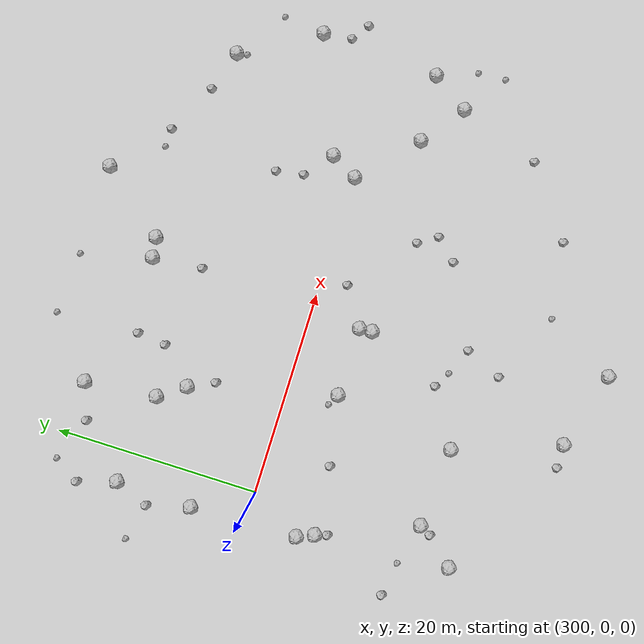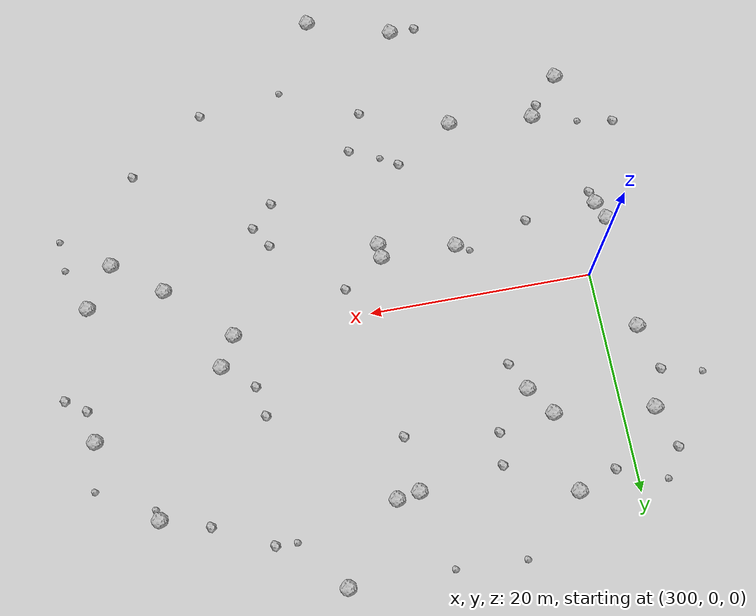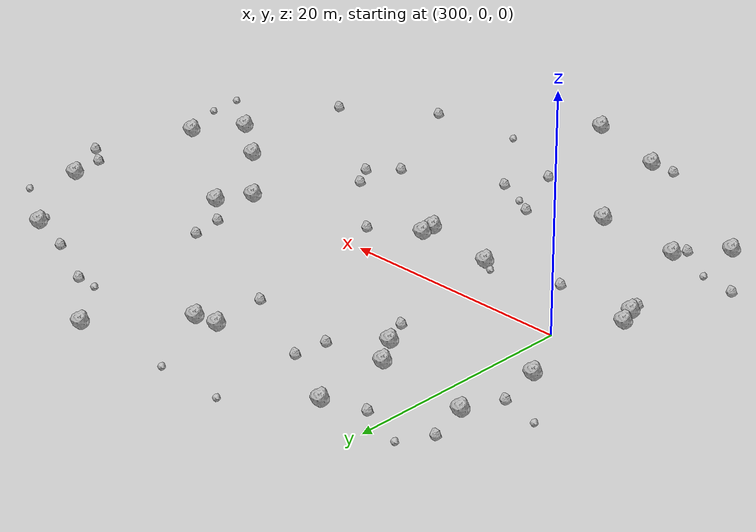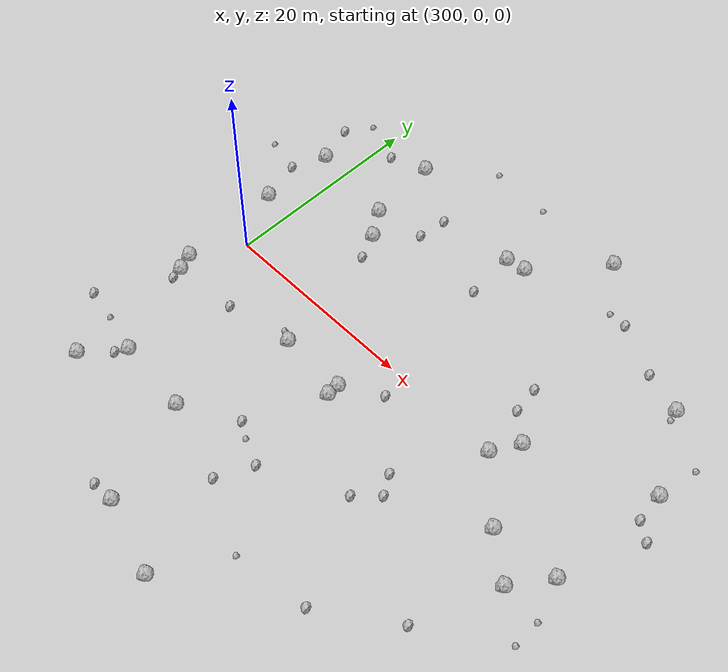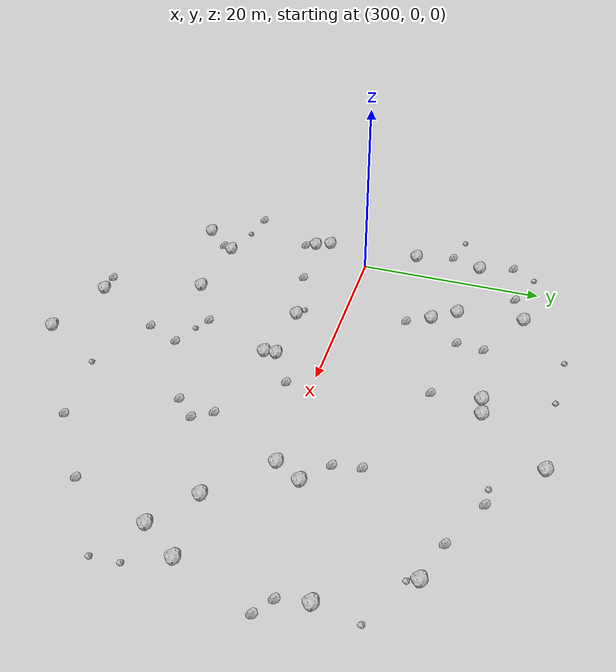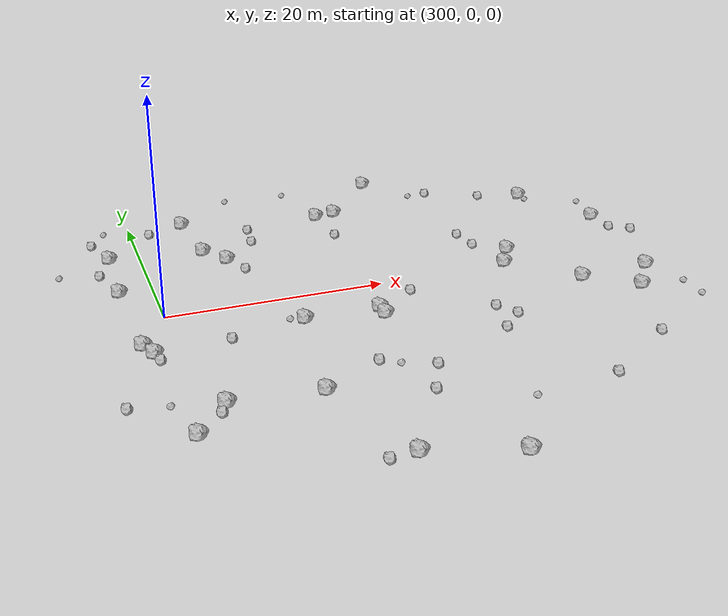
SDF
<sdf version="1.6">
 <world name="default">
  <include><uri>model://sun</uri></include>
  <model name="rock1_8_2">
   <include><uri>model://rock1</uri><pose>332.3651189671823 -0.12615887867686837 0.5 0 0 0</pose></include>
  </model>
  <model name="rock1_8_3">
   <include><uri>model://rock1</uri><pose>318.1235895319773 -4.956846399359648 0.5 0 0 0</pose></include>
  </model>
  <model name="rock1_8_4">
   <include><uri>model://rock1</uri><pose>313.2032707551406 -27.018634415828473 0.5 0 0 0</pose></include>
  </model>
  <model name="rock1_8_5">
   <include><uri>model://rock1</uri><pose>318.1974326363777 -6.234334202056548 0.5 0 0 0</pose></include>
  </model>
  <model name="rock1_8_6">
   <include><uri>model://rock1</uri><pose>320.7803408478695 -29.400631608789844 0.5 0 0 0</pose></include>
  </model>
  <model name="rock1_8_7">
   <include><uri>model://rock1</uri><pose>337.89229141752537 -5.327075768478764 0.5 0 0 0</pose></include>
  </model>
  <model name="rock1_8_8">
   <include><uri>model://rock1</uri><pose>298.8676991578963 -19.703655122965564 0.5 0 0 0</pose></include>
  </model>
  <model name="rock1_8_9">
   <include><uri>model://rock1</uri><pose>345.64774104338665 7.23480214739061 0.5 0 0 0</pose></include>
  </model>
  <model name="rock1_8_10">
   <include><uri>model://rock1</uri><pose>305.30543812383513 18.98958033297727 0.5 0 0 0</pose></include>
  </model>
  <model name="rock1_8_11">
   <include><uri>model://rock1</uri><pose>344.80414710115423 -4.905600515419838 0.5 0 0 0</pose></include>
  </model>
  <model name="rock1_8_12">
   <include><uri>model://rock1</uri><pose>305.98555910906674 11.883981250996989 0.5 0 0 0</pose></include>
  </model>
  <model name="rock1_8_13">
   <include><uri>model://rock1</uri><pose>298.00713269492877 -6.6468844231021755 0.5 0 0 0</pose></include>
  </model>
  <model name="rock1_8_14">
   <include><uri>model://rock1</uri><pose>297.1762921760268 12.954567392678115 0.5 0 0 0</pose></include>
  </model>
  <model name="rock1_8_15">
   <include><uri>model://rock1</uri><pose>309.54779813632405 -16.767126733319046 0.5 0 0 0</pose></include>
  </model>
  <model name="rock1_8_16">
   <include><uri>model://rock1</uri><pose>318.79617725487947 16.54391106266877 0.5 0 0 0</pose></include>
  </model>
  <model name="rock1_8_17">
   <include><uri>model://rock1</uri><pose>342.2356756182966 -8.588083544923553 0.5 0 0 0</pose></include>
  </model>
  <model name="rock1_8_18">
   <include><uri>model://rock1</uri><pose>333.8762999810415 2.561232120643936 0.5 0 0 0</pose></include>
  </model>
  <model name="rock1_8_19">
   <include><uri>model://rock1</uri><pose>307.77399489164185 9.3417033078875 0.5 0 0 0</pose></include>
  </model>
  <model name="rock1_8_20">
   <include><uri>model://rock1</uri><pose>320.8106321766237 16.860944035101504 0.5 0 0 0</pose></include>
  </model>
  <model name="rock1_8_21">
   <include><uri>model://rock1</uri><pose>301.8305454005829 -16.038475940313774 0.5 0 0 0</pose></include>
  </model>
  <model name="rock1_8_22">
   <include><uri>model://rock1</uri><pose>341.062367755124 14.97986937647179 0.5 0 0 0</pose></include>
  </model>
  <model name="rock1_8_23">
   <include><uri>model://rock1</uri><pose>326.25287885167165 23.49000891559269 0.5 0 0 0</pose></include>
  </model>
  <model name="rock1_8_24">
   <include><uri>model://rock1</uri><pose>297.3257951344707 -5.010307857161386 0.5 0 0 0</pose></include>
  </model>
  <model name="rock1_8_25">
   <include><uri>model://rock1</uri><pose>311.3243210243445 -4.874323012931839 0.5 0 0 0</pose></include>
  </model>
  <model name="rock1_8_26">
   <include><uri>model://rock1</uri><pose>296.98278559834904 5.4674335893084205 0.5 0 0 0</pose></include>
  </model>
  <model name="rock2_8_0">
   <include><uri>model://rock2</uri><pose>301.75564665525184 17.69046263543273 0.3 0 0 0</pose></include>
  </model>
  <model name="rock2_8_1">
   <include><uri>model://rock2</uri><pose>310.9583188043452 12.727669389459841 0.3 0 0 0</pose></include>
  </model>
  <model name="rock2_8_2">
   <include><uri>model://rock2</uri><pose>327.8905764943594 -7.927589487634904 0.3 0 0 0</pose></include>
  </model>
  <model name="rock2_8_3">
   <include><uri>model://rock2</uri><pose>331.15496171887656 4.835060936615463 0.3 0 0 0</pose></include>
  </model>
  <model name="rock2_8_4">
   <include><uri>model://rock2</uri><pose>332.22383216573854 -21.731938128246245 0.3 0 0 0</pose></include>
  </model>
  <model name="rock2_8_5">
   <include><uri>model://rock2</uri><pose>304.5612305167926 -6.118654859053102 0.3 0 0 0</pose></include>
  </model>
  <model name="rock2_8_6">
   <include><uri>model://rock2</uri><pose>321.84439682776406 -2.5773659884835673 0.3 0 0 0</pose></include>
  </model>
  <model name="rock2_8_7">
   <include><uri>model://rock2</uri><pose>310.8779973992425 -27.055633692481546 0.3 0 0 0</pose></include>
  </model>
  <model name="rock2_8_8">
   <include><uri>model://rock2</uri><pose>311.2715064136517 15.608069795588278 0.3 0 0 0</pose></include>
  </model>
  <model name="rock2_8_9">
   <include><uri>model://rock2</uri><pose>294.4992873367318 -14.350792085709427 0.3 0 0 0</pose></include>
  </model>
  <model name="rock2_8_10">
   <include><uri>model://rock2</uri><pose>308.9204741924438 6.843841210137235 0.3 0 0 0</pose></include>
  </model>
  <model name="rock2_8_11">
   <include><uri>model://rock2</uri><pose>336.8282400472802 16.31951783440813 0.3 0 0 0</pose></include>
  </model>
  <model name="rock2_8_12">
   <include><uri>model://rock2</uri><pose>295.79281764399 9.656551601709275 0.3 0 0 0</pose></include>
  </model>
  <model name="rock2_8_13">
   <include><uri>model://rock2</uri><pose>317.58299547074216 -19.30024661642876 0.3 0 0 0</pose></include>
  </model>
  <model name="rock2_8_14">
   <include><uri>model://rock2</uri><pose>301.17430009036894 -17.161011036525988 0.3 0 0 0</pose></include>
  </model>
  <model name="rock2_8_15">
   <include><uri>model://rock2</uri><pose>329.1064984829135 -9.824023027929627 0.3 0 0 0</pose></include>
  </model>
  <model name="rock2_8_16">
   <include><uri>model://rock2</uri><pose>339.19054732431374 -16.78000956982503 0.3 0 0 0</pose></include>
  </model>
  <model name="rock2_8_17">
   <include><uri>model://rock2</uri><pose>327.10776822855036 -11.894591532481073 0.3 0 0 0</pose></include>
  </model>
  <model name="rock2_8_18">
   <include><uri>model://rock2</uri><pose>330.6890355333126 7.586138377775818 0.3 0 0 0</pose></include>
  </model>
  <model name="rock2_8_19">
   <include><uri>model://rock2</uri><pose>295.9565545091444 16.743222015842797 0.3 0 0 0</pose></include>
  </model>
  <model name="rock2_8_20">
   <include><uri>model://rock2</uri><pose>331.7029938103388 18.88316587611707 0.3 0 0 0</pose></include>
  </model>
  <model name="rock2_8_21">
   <include><uri>model://rock2</uri><pose>319.18667101320125 -15.747353606851483 0.3 0 0 0</pose></include>
  </model>
  <model name="rock2_8_22">
   <include><uri>model://rock2</uri><pose>314.91106924408643 -13.632519330503804 0.3 0 0 0</pose></include>
  </model>
  <model name="rock2_8_23">
   <include><uri>model://rock2</uri><pose>298.26467390750906 -7.793430539547369 0.3 0 0 0</pose></include>
  </model>
  <model name="rock2_8_24">
   <include><uri>model://rock2</uri><pose>347.7919593599252 3.1008488597943114 0.3 0 0 0</pose></include>
  </model>
  <model name="rock2_8_25">
   <include><uri>model://rock2</uri><pose>345.99944837257243 4.346799120114369 0.3 0 0 0</pose></include>
  </model>
  <model name="rock2_8_26">
   <include><uri>model://rock2</uri><pose>319.20202885141015 11.589220889993548 0.3 0 0 0</pose></include>
  </model>
  <model name="rock3_8_0">
   <include><uri>model://rock3</uri><pose>292.19748995222 10.49960142514837 0.2 0 0 0</pose></include>
  </model>
  <model name="rock3_8_1">
   <include><uri>model://rock3</uri><pose>316.4632437055362 -14.600559091168407 0.2 0 0 0</pose></include>
  </model>
  <model name="rock3_8_2">
   <include><uri>model://rock3</uri><pose>297.7031487182223 -14.976248314799758 0.2 0 0 0</pose></include>
  </model>
  <model name="rock3_8_3">
   <include><uri>model://rock3</uri><pose>310.1145461998616 -4.285989088204573 0.2 0 0 0</pose></include>
  </model>
  <model name="rock3_8_4">
   <include><uri>model://rock3</uri><pose>346.33816269041176 -8.941997247304183 0.2 0 0 0</pose></include>
  </model>
  <model name="rock3_8_5">
   <include><uri>model://rock3</uri><pose>329.7962306390156 18.908094607088152 0.2 0 0 0</pose></include>
  </model>
  <model name="rock3_8_6">
   <include><uri>model://rock3</uri><pose>346.19425722197025 11.491129686028266 0.2 0 0 0</pose></include>
  </model>
  <model name="rock3_8_7">
   <include><uri>model://rock3</uri><pose>317.01879158182237 23.556065321066818 0.2 0 0 0</pose></include>
  </model>
  <model name="rock3_8_8">
   <include><uri>model://rock3</uri><pose>324.5751025272 -22.761368140875888 0.2 0 0 0</pose></include>
  </model>
  <model name="rock3_8_9">
   <include><uri>model://rock3</uri><pose>310.84259564071874 23.855516099986005 0.2 0 0 0</pose></include>
  </model>
  <model name="rock3_8_10">
   <include><uri>model://rock3</uri><pose>341.26572081696395 13.95964329832298 0.2 0 0 0</pose></include>
  </model>
  <model name="rock3_8_11">
   <include><uri>model://rock3</uri><pose>346.490950411845 -11.750649230118938 0.2 0 0 0</pose></include>
  </model>
  <model name="rock3_8_12">
   <include><uri>model://rock3</uri><pose>297.452615692755 19.264708377517167 0.2 0 0 0</pose></include>
  </model>
 </world>
</sdf>
